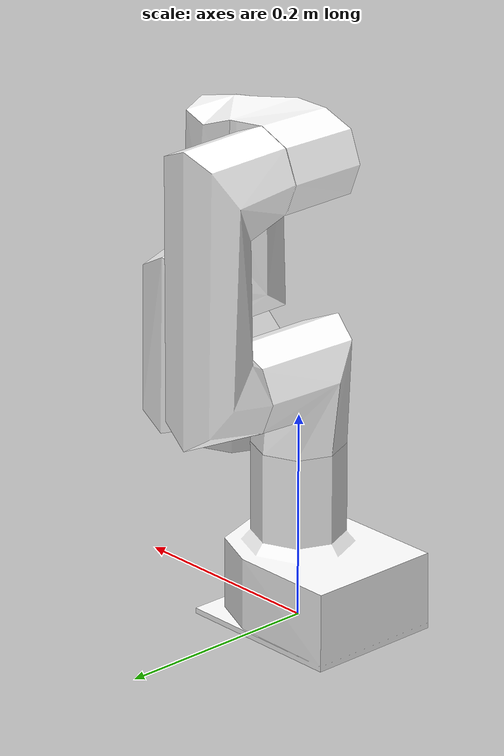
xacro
<?xml version='1.0' encoding='utf-8'?>
<robot xmlns:xacro="http://ros.org/wiki/xacro" name="lite6">
  <xacro:arg name="prefix" default=""/>
  <xacro:arg name="ros_namespace" default="xarm"/>
  <xacro:arg name="limited" default="false"/>
  <xacro:arg name="effort_control" default="false"/>
  <xacro:arg name="velocity_control" default="false"/>
  <xacro:arg name="add_gripper" default="false"/>
  <xacro:arg name="add_vacuum_gripper" default="false"/>

  <xacro:arg name="add_other_geometry" default="false"/>
  <xacro:arg name="geometry_type" default="box"/>
  <xacro:arg name="geometry_mass" default="0.1"/>
  <xacro:arg name="geometry_height" default="0.1"/>
  <xacro:arg name="geometry_radius" default="0.1"/>
  <xacro:arg name="geometry_length" default="0.1"/>
  <xacro:arg name="geometry_width" default="0.1"/>
  <xacro:arg name="geometry_mesh_filename" default=""/>
  <xacro:arg name="geometry_mesh_origin_xyz" default="0 0 0"/>
  <xacro:arg name="geometry_mesh_origin_rpy" default="0 0 0"/>
  <xacro:arg name="geometry_mesh_tcp_xyz" default="0 0 0"/>
  <xacro:arg name="geometry_mesh_tcp_rpy" default="0 0 0"/>

  <xacro:arg name="add_realsense_d435i" default="false"/>

  <!-- load lite6 robot -->
  <xacro:include filename="$(find horti_description)/urdf/inc/lite6_robot_macro.xacro" />
  <xacro:lite6_robot prefix="$(arg prefix)" namespace="$(arg ros_namespace)" limited="$(arg limited)"
    effort_control="$(arg effort_control)" velocity_control="$(arg velocity_control)"
    rs_d435i="$(arg add_realsense_d435i)"
    add_other_geometry="$(arg add_other_geometry)"
    geometry_type="$(arg geometry_type)" geometry_mass="$(arg geometry_mass)"
    geometry_height="$(arg geometry_height)" geometry_radius="$(arg geometry_radius)"
    geometry_length="$(arg geometry_length)" geometry_width="$(arg geometry_width)"
    geometry_mesh_filename="$(arg geometry_mesh_filename)"
    geometry_mesh_origin_xyz="$(arg geometry_mesh_origin_xyz)" geometry_mesh_origin_rpy="$(arg geometry_mesh_origin_rpy)"
    geometry_mesh_tcp_xyz="$(arg geometry_mesh_tcp_xyz)" geometry_mesh_tcp_rpy="$(arg geometry_mesh_tcp_rpy)" />

  <xacro:if value="$(arg add_gripper)">
    <xacro:include filename="$(find horti_description)/urdf/inc/lite_gripper.urdf.xacro" />
    <xacro:uflite_gripper_urdf attach_to="$(arg prefix)link_eef" />
  </xacro:if>

  <xacro:unless value="$(arg add_gripper)">
    <xacro:if value="$(arg add_vacuum_gripper)" >
      <xacro:include filename="$(find horti_description)/urdf/inc/lite_vacuum_gripper.urdf.xacro" />
      <xacro:uflite_vacuum_gripper_urdf attach_to="$(arg prefix)link_eef" />
    </xacro:if>
  </xacro:unless>

</robot>

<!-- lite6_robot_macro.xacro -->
<robot xmlns:xacro="http://ros.org/wiki/xacro" name="lite6" >
  <xacro:macro name="lite6_robot" params="prefix:='' namespace:='xarm' limited:='false' effort_control:='false'
    velocity_control:='false' attach_to:='world' xyz:='0 0 0' rpy:='0 0 0' load_gazebo_plugin:='false' rs_d435i:='false'
    add_other_geometry:='false'
    geometry_type:='box' geometry_mass:='0.1'
    geometry_radius:='0.1' geometry_height:='0.1'
    geometry_length:='0.1' geometry_width:='0.1'
    geometry_mesh_filename:=''
    geometry_mesh_origin_xyz:='0 0 0'
    geometry_mesh_origin_rpy:='0 0 0'
    geometry_mesh_tcp_xyz:='0 0 0'
    geometry_mesh_tcp_rpy:='0 0 0' ">

    <!-- include lite6 relative macros: -->
    <xacro:include filename="$(find horti_description)/urdf/inc/xarm/lite6.urdf.xacro" />
    <xacro:include filename="$(find horti_description)/urdf/inc/xarm/lite6.transmission.xacro" />
    <xacro:include filename="$(find horti_description)/urdf/inc/xarm/lite6.gazebo.xacro" />

    <!-- gazebo_plugin -->
    <xacro:if value="${load_gazebo_plugin}">
    <xacro:include filename="$(find horti_description)/urdf/inc/xarm/common.gazebo.xacro" />
    <xacro:gazebo_ros_control_plugin namespace="${namespace}"/>
    </xacro:if>

    <!-- add one world link if no 'attach_to' specified  -->
    <xacro:if value="${attach_to == 'world'}">
      <link name="world" />
    </xacro:if>

    <joint name="${prefix}world_joint" type="fixed">
      <parent link="${attach_to}" />
      <child link = "${prefix}link_base" />
      <origin xyz="${xyz}" rpy="${rpy}" />
    </joint>

    <xacro:if value="${limited}">
      <xacro:lite6_urdf prefix="${prefix}"
        joint1_lower_limit="${-pi}"   joint1_upper_limit="${pi}"
        joint2_lower_limit="${-2.61799}"  joint2_upper_limit="${2.61799}"
        joint3_lower_limit="${-0.061087}" joint3_upper_limit="${5.235988}"
        joint4_lower_limit="${-pi}"   joint4_upper_limit="${pi}"
        joint5_lower_limit="${-2.1642}"   joint5_upper_limit="${2.1642}"
        joint6_lower_limit="${-pi}"   joint6_upper_limit="${pi}"
        rs_d435i="${rs_d435i}"/>
    </xacro:if>
    <xacro:unless value="${limited}">
      <xacro:lite6_urdf prefix="${prefix}" rs_d435i="${rs_d435i}"/>
    </xacro:unless>

    <xacro:lite6_transmission prefix="${prefix}" hard_interface="$(eval 'EffortJointInterface' if ${effort_control} else 'VelocityJointInterface' if ${velocity_control} else 'PositionJointInterface')" />

    <xacro:lite6_gazebo prefix="${prefix}" />

    <xacro:if value="${add_other_geometry}">
      <xacro:include filename="$(find horti_description)/urdf/inc/xarm/other_geometry.urdf.xacro" />
      <xacro:other_geometry prefix="${prefix}" attach_to="${prefix}link_eef"
        geometry_type="${geometry_type}" geometry_mass="${geometry_mass}"
        geometry_height="${geometry_height}" geometry_radius="${geometry_radius}"
        geometry_length="${geometry_length}" geometry_width="${geometry_width}"
        geometry_mesh_filename="${geometry_mesh_filename}"
        geometry_mesh_origin_xyz="${geometry_mesh_origin_xyz}" geometry_mesh_origin_rpy="${geometry_mesh_origin_rpy}"
        geometry_mesh_tcp_xyz="${geometry_mesh_tcp_xyz}" geometry_mesh_tcp_rpy="${geometry_mesh_tcp_rpy}"
      />
    </xacro:if>

  </xacro:macro>

</robot>

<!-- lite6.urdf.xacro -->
<robot xmlns:xacro="http://ros.org/wiki/xacro">

    <xacro:property name="collision_type" value="reduced_mesh_manual_performance" />
    <!-- Values: reduced_mesh_auto, reduced_mesh_manual_quality, reduced_mesh_manual_performance, spheres, shapes, capsules-->

  <xacro:macro name="lite6_urdf" params="prefix
    joint1_lower_limit:=${-2.0*pi}  joint1_upper_limit:=${2.0*pi}
    joint2_lower_limit:=${-2.61799}  joint2_upper_limit:=${2.61799}
    joint3_lower_limit:=${-0.061087}  joint3_upper_limit:=${5.235988}
    joint4_lower_limit:=${-2.0*pi}  joint4_upper_limit:=${2.0*pi}
    joint5_lower_limit:=${-2.1642}  joint5_upper_limit:=${2.1642}
    joint6_lower_limit:=${-2.0*pi}  joint6_upper_limit:=${2.0*pi}
    rs_d435i:=false">

    <material name="${prefix}White">
      <color rgba="1.0 1.0 1.0 1.0"/>
    </material>

    <material name="${prefix}Silver">
      <color rgba="0.753 0.753 0.753 1.0"/>
    </material>

    <link name="${prefix}link_base">
      <inertial>
        <origin
          xyz="-0.00829544579053192 3.26357432323433E-05 0.0631194584987089"
          rpy="0 0 0" />
        <mass
          value="2.11" />
        <inertia
          ixx="0"
          ixy="0"
          ixz="0"
          iyy="0"
          iyz="0"
          izz="0" />
      </inertial>
      <visual>
        <origin
          xyz="0 0 0"
          rpy="0 0 0" />
        <geometry>
          <mesh filename="package://horti_description/meshes/lite6/visual/base.stl"/>
        </geometry>
        <material name="${prefix}White" />
      </visual>

    <xacro:if value="${collision_type == 'reduced_mesh_auto'}">
        <collision>
            <geometry>
                <mesh filename="package://horti_description/meshes/lite6/collision/base.stl" />
            </geometry>
        </collision>
    </xacro:if>

    <xacro:if value="${collision_type == 'reduced_mesh_manual_quality'}">
        <collision>
            <geometry>
                <mesh filename="package://horti_description/meshes/lite6/collision_manual_quality/link_base_collision.STL" />
            </geometry>
        </collision>
    </xacro:if>

    <xacro:if value="${collision_type == 'reduced_mesh_manual_performance'}">
        <collision>
            <geometry>
                <mesh filename="package://horti_description/meshes/lite6/collision_manual_performance/link_base_collision.STL" />
            </geometry>
        </collision>
    </xacro:if>

    <xacro:if value="${collision_type == 'spheres'}">
    </xacro:if>

    <xacro:if value="${collision_type == 'shapes'}">
    </xacro:if>

    <xacro:if value="${collision_type == 'capsules'}">
        <xacro:capsule-collision e1="-0.0054528 -3.46273e-05 0.0283824" e2="-0.00259396 0.000248867 0.0897363" rad="0.09368540881077124" len="0.06142103881013667" rpy="-0.00462062 0.0465617 -0.000107592" mid="-0.00402338 0.00010712 0.0590593" />
    </xacro:if>

    </link>
    <link name="${prefix}link1">
      <inertial>
        <origin
          xyz="-0.00036 0.042 -0.0025"
          rpy="0 0 0" />
        <mass
          value="1.411" />
        <inertia
          ixx="1.45164E-03"
          ixy="1.24E-05"
          ixz="-6.7E-06"
          iyy="8.873E-04"
          iyz="1.255E-04"
          izz="1.31993E-03" />
      </inertial>
      <visual>
        <origin
          xyz="0 0 0"
          rpy="0 0 0" />
        <geometry>
          <mesh filename="package://horti_description/meshes/lite6/visual/link1.stl"/>
        </geometry>
        <material name="${prefix}White" />
      </visual>
    <xacro:if value="${collision_type == 'reduced_mesh_auto'}">
        <collision>
            <geometry>
                <mesh filename="package://horti_description/meshes/lite6/collision/link1.stl" />
            </geometry>
        </collision>
    </xacro:if>

    <xacro:if value="${collision_type == 'reduced_mesh_manual_quality'}">
        <collision>
            <geometry>
                <mesh filename="package://horti_description/meshes/lite6/collision_manual_quality/link1_collision.STL" />
            </geometry>
        </collision>
    </xacro:if>

    <xacro:if value="${collision_type == 'reduced_mesh_manual_performance'}">
        <collision>
            <geometry>
                <mesh filename="package://horti_description/meshes/lite6/collision_manual_performance/link1_collision.STL" />
            </geometry>
        </collision>
    </xacro:if>

    <xacro:if value="${collision_type == 'spheres'}">
    </xacro:if>

    <xacro:if value="${collision_type == 'shapes'}">
    </xacro:if>

    <xacro:if value="${collision_type == 'capsules'}">
        <xacro:capsule-collision e1="-0.000361192 0.000422669 -0.0220196" e2="2.08195e-06 0.0296148 -0.0011838" rad="0.063890160267874307" len="0.035867029495341492" rpy="-0.950903 0.0101285 -0.00521464" mid="-0.000179555 0.0150187 -0.0116017" />
    </xacro:if>
    </link>
    <joint name="${prefix}joint1" type="revolute">
      <origin
        xyz="0 0 0.2433"
        rpy="0 0 0" />
      <parent
        link="${prefix}link_base" />
      <child
        link="${prefix}link1" />
      <axis
        xyz="0 0 1" />
      <limit
        lower="${joint1_lower_limit}"
        upper="${joint1_upper_limit}"
        effort="32.0"
        velocity="3.14"/>
      <dynamics damping="1.0" friction="1.0"/>
    </joint>
    <link name="${prefix}link2">
      <inertial>
        <origin
          xyz="0.179 0.0 0.0584"
          rpy="0 0 0" />
        <mass
          value="1.34" />
        <inertia
          ixx="1.5854E-03"
          ixy="-6.766E-06"
          ixz="-1.15136E-03"
          iyy="5.6097E-03"
          iyz="1.14E-06"
          izz="4.85E-03" />
      </inertial>
      <visual>
        <origin
          xyz="0 0 0"
          rpy="0 0 0" />
        <geometry>
          <mesh filename="package://horti_description/meshes/lite6/visual/link2.stl"/>
        </geometry>
        <material name="${prefix}White" />
      </visual>

    <xacro:if value="${collision_type == 'reduced_mesh_auto'}">
        <collision>
            <geometry>
                <mesh filename="package://horti_description/meshes/lite6/collision/link2.stl" />
            </geometry>
        </collision>
    </xacro:if>

    <xacro:if value="${collision_type == 'reduced_mesh_manual_quality'}">
        <collision>
            <geometry>
                <mesh filename="package://horti_description/meshes/lite6/collision_manual_quality/link2_collision.STL" />
            </geometry>
        </collision>
    </xacro:if>

    <xacro:if value="${collision_type == 'reduced_mesh_manual_performance'}">
        <collision>
            <geometry>
                <mesh filename="package://horti_description/meshes/lite6/collision_manual_performance/link2_collision.STL" />
            </geometry>
        </collision>
    </xacro:if>

    <xacro:if value="${collision_type == 'spheres'}">
    </xacro:if>

    <xacro:if value="${collision_type == 'shapes'}">
    </xacro:if>

    <xacro:if value="${collision_type == 'capsules'}">
        <xacro:capsule-collision e1="0.0054332 -9.9597e-05 0.100752" e2="0.201413 -6.01135e-05 0.0811532" rad="0.053148363034440045" len="0.19695717559298798" rpy="-3.13958 1.47112 -3.13937" mid="0.103423 -7.98553e-05 0.0909527" />
    </xacro:if>

    </link>
    <joint name="${prefix}joint2" type="revolute">
      <origin
        xyz="0 0 0"
        rpy="1.5708 -1.5708 3.1416" />
      <parent
        link="${prefix}link1" />
      <child
        link="${prefix}link2" />
      <axis
        xyz="0 0 1" />
      <limit
        lower="${joint2_lower_limit}"
        upper="${joint2_upper_limit}"
        effort="32.0"
        velocity="3.14"/>
      <dynamics damping="1.0" friction="1.0"/>
    </joint>
    <link name="${prefix}link3">
      <inertial>
        <origin
          xyz="0.072 -0.036 -0.001"
          rpy="0 0 0" />
        <mass
          value="0.953" />
        <inertia
          ixx="8.861E-04"
          ixy="-3.9287E-04"
          ixz="7.066E-05"
          iyy="1.5785E-03"
          iyz="-2.445E-05"
          izz="1.84677E-03" />
      </inertial>
      <visual>
        <origin
          xyz="0 0 0"
          rpy="0 0 0" />
        <geometry>
          <mesh filename="package://horti_description/meshes/lite6/visual/link3.stl"/>
        </geometry>
        <material name="${prefix}White" />
      </visual>

    <xacro:if value="${collision_type == 'reduced_mesh_auto'}">
        <collision>
            <geometry>
                <mesh filename="package://horti_description/meshes/lite6/collision/link3.stl" />
            </geometry>
        </collision>
    </xacro:if>

    <xacro:if value="${collision_type == 'reduced_mesh_manual_quality'}">
        <collision>
            <geometry>
                <mesh filename="package://horti_description/meshes/lite6/collision_manual_quality/link3_collision.STL" />
            </geometry>
        </collision>
    </xacro:if>

    <xacro:if value="${collision_type == 'reduced_mesh_manual_performance'}">
        <collision>
            <geometry>
                <mesh filename="package://horti_description/meshes/lite6/collision_manual_performance/link3_collision.STL" />
            </geometry>
        </collision>
    </xacro:if>

    <xacro:if value="${collision_type == 'spheres'}">
    </xacro:if>

    <xacro:if value="${collision_type == 'shapes'}">
    </xacro:if>

    <xacro:if value="${collision_type == 'capsules'}">
        <xacro:capsule-collision e1="-0.000200074 -6.06765e-05 -0.00900904" e2="0.0782117 -0.0108837 -1.99642e-05" rad="0.053567713887000434" len="0.079663975339148679" rpy="0.877702 1.39326 0.748316" mid="0.0390058 -0.00547219 -0.0045145" />
    </xacro:if>

    </link>
    <joint name="${prefix}joint3" type="revolute">
      <origin
        xyz="0.2 0 0"
        rpy="-3.1416 0 1.5708" />
      <parent
        link="${prefix}link2" />
      <child
        link="${prefix}link3" />
      <axis
        xyz="0 0 1" />
      <limit
        lower="${joint3_lower_limit}"
        upper="${joint3_upper_limit}"
        effort="18.0"
        velocity="3.14"/>
      <dynamics damping="1.0" friction="1.0"/>
    </joint>
    <link name="${prefix}link4">
      <inertial>
        <origin
          xyz="-0.002 -0.0285 -0.0813"
          rpy="0 0 0" />
        <mass
          value="1.284" />
        <inertia
          ixx="3.705E-03"
          ixy="-2.0E-06"
          ixz="7.17E-06"
          iyy="3.0455E-03"
          iyz="-9.3188E-04"
          izz="1.5413E-03" />
      </inertial>
      <visual>
        <origin
          xyz="0 0 0"
          rpy="0 0 0" />
        <geometry>
          <mesh filename="package://horti_description/meshes/lite6/visual/link4.stl"/>
        </geometry>
        <material name="${prefix}White" />
      </visual>

    <xacro:if value="${collision_type == 'reduced_mesh_auto'}">
        <collision>
            <geometry>
                <mesh filename="package://horti_description/meshes/lite6/collision/link4.stl" />
            </geometry>
        </collision>
    </xacro:if>

    <xacro:if value="${collision_type == 'reduced_mesh_manual_quality'}">
        <collision>
            <geometry>
                <mesh filename="package://horti_description/meshes/lite6/collision_manual_quality/link4_collision.STL" />
            </geometry>
        </collision>
    </xacro:if>

    <xacro:if value="${collision_type == 'reduced_mesh_manual_performance'}">
        <collision>
            <geometry>
                <mesh filename="package://horti_description/meshes/lite6/collision_manual_performance/link4_collision.STL" />
            </geometry>
        </collision>
    </xacro:if>

    <xacro:if value="${collision_type == 'spheres'}">
    </xacro:if>

    <xacro:if value="${collision_type == 'shapes'}">
    </xacro:if>

    <xacro:if value="${collision_type == 'capsules'}">
        <xacro:capsule-collision e1="-0.00693104 -0.0545553 -0.0272353" e2="0.000145021 -0.0012119 -0.138516" rad="0.066752435195672727" len="0.12360792315155163" rpy="-2.69459 0.0572774 -0.25074" mid="-0.00339301 -0.0278836 -0.0828755" />
    </xacro:if>

    </link>
    <joint name="${prefix}joint4" type="revolute">
      <origin
        xyz="0.087 -0.2276 0"
        rpy="1.5708 0 0" />
      <parent
        link="${prefix}link3" />
      <child
        link="${prefix}link4" />
      <axis
        xyz="0 0 1" />
      <limit
        lower="${joint4_lower_limit}"
        upper="${joint4_upper_limit}"
        effort="2.5"
        velocity="3.14"/>
      <dynamics damping="0.1" friction="0.1"/>
    </joint>
    <link name="${prefix}link5">
      <inertial>
        <origin
          xyz="0.0 0.010 0.0019"
          rpy="0 0 0" />
        <mass
          value="0.804" />
        <inertia
          ixx="5.668E-04"
          ixy="6E-07"
          ixz="-5.3E-06"
          iyy="5.077E-04"
          iyz="-4.8E-07"
          izz="5.3E-04" />
      </inertial>
      <visual>
        <origin
          xyz="0 0 0"
          rpy="0 0 0" />
        <geometry>
          <mesh filename="package://horti_description/meshes/lite6/visual/link5.stl"/>
        </geometry>
        <material name="${prefix}Silver" />
      </visual>

    <xacro:if value="${collision_type == 'reduced_mesh_auto'}">
        <collision>
            <geometry>
                <mesh filename="package://horti_description/meshes/lite6/collision/link5.stl" />
            </geometry>
        </collision>
    </xacro:if>

    <xacro:if value="${collision_type == 'reduced_mesh_manual_quality'}">
        <collision>
            <geometry>
                <mesh filename="package://horti_description/meshes/lite6/collision_manual_quality/link5_collision.STL" />
            </geometry>
        </collision>
    </xacro:if>

    <xacro:if value="${collision_type == 'reduced_mesh_manual_performance'}">
        <collision>
            <geometry>
                <mesh filename="package://horti_description/meshes/lite6/collision_manual_performance/link5_collision.STL" />
            </geometry>
        </collision>
    </xacro:if>

    <xacro:if value="${collision_type == 'spheres'}">
    </xacro:if>

    <xacro:if value="${collision_type == 'shapes'}">
    </xacro:if>

    <xacro:if value="${collision_type == 'capsules'}">
        <xacro:capsule-collision e1="0.000256318 0.00945339 0.00418025" e2="-0.000230592 -0.00402292 0.00211128" rad="0.054491213054397282" len="0.013642894966188644" rpy="1.72313 -0.0356972 -0.0415943" mid="1.2863e-05 0.00271524 0.00314576" />
    </xacro:if>

    </link>
    <joint name="${prefix}joint5" type="revolute">
      <origin
        xyz="0 0 0"
        rpy="1.5708 0 0" />
      <parent
        link="${prefix}link4" />
      <child
        link="${prefix}link5" />
      <axis
        xyz="0 0 1" />
      <limit
        lower="${joint5_lower_limit}"
        upper="${joint5_upper_limit}"
        effort="2.5"
        velocity="3.14"/>
      <dynamics damping="0.1" friction="0.1"/>
    </joint>
    <link name="${prefix}link6">
      <inertial>
        <origin
          xyz="0.0 -0.00194 -0.0102"
          rpy="0 0 0" />
        <mass
          value="0.180" />
        <inertia
          ixx="7.726E-05"
          ixy="1E-06"
          ixz="4E-07"
          iyy="8.5665E-05"
          iyz="-6E-07"
          izz="1.4814E-04" />
      </inertial>
      <visual>
        <origin
          xyz="0 0 0"
          rpy="0 0 0" />
        <geometry>
          <mesh filename="package://horti_description/meshes/lite6/visual/link6.stl"/>
        </geometry>
        <material name="${prefix}Silver" />
      </visual>

    <xacro:if value="${collision_type == 'reduced_mesh_auto'}">
        <collision>
            <geometry>
                <mesh filename="package://horti_description/meshes/lite6/collision/link6.stl" />
            </geometry>
        </collision>
    </xacro:if>

    <xacro:if value="${collision_type == 'reduced_mesh_manual_quality'}">
        <collision>
            <geometry>
                <mesh filename="package://horti_description/meshes/lite6/collision_manual_quality/link6_collision.STL" />
            </geometry>
        </collision>
    </xacro:if>

    <xacro:if value="${collision_type == 'reduced_mesh_manual_performance'}">
        <collision>
            <geometry>
                <mesh filename="package://horti_description/meshes/lite6/collision_manual_performance/link6_collision.STL" />
            </geometry>
        </collision>
    </xacro:if>

    <xacro:if value="${collision_type == 'spheres'}">
    </xacro:if>

    <xacro:if value="${collision_type == 'shapes'}">
    </xacro:if>

    <xacro:if value="${collision_type == 'capsules'}">
        <xacro:capsule-collision e1="-0.000205766 0.000151288 -0.0101214" e2="0.00034011 -4.8247e-05 -0.0101304" rad="0.039592907362076969" len="0.00058126976613551964" rpy="1.61557 1.22003 1.2624" mid="6.71721e-05 5.15207e-05 -0.0101259" />
    </xacro:if>

    </link>
    <joint name="${prefix}joint6" type="revolute">
      <origin
        xyz="0 0.0615 0"
        rpy="-1.5708 0 0" />
      <parent
        link="${prefix}link5" />
      <child
        link="${prefix}link6" />
      <axis
        xyz="0 0 1" />
      <limit
        lower="${joint6_lower_limit}"
        upper="${joint6_upper_limit}"
        effort="2.5"
        velocity="3.14"/>
      <dynamics damping="0.1" friction="0.1"/>
    </joint>

    <xacro:if value="${rs_d435i}">
      <link name="${prefix}link_eef">
        <visual>
          <origin
            xyz="0 0 0"
            rpy="0 0 0" />
          <geometry>
            <mesh
              filename="package://d435i_xarm_setup/mesh/d435_with_cam_stand.STL" />
          </geometry>
          <material name="Silver" />
        </visual>
        <collision>
          <origin
            xyz="0 0 0"
            rpy="0 0 0" />
          <geometry>
            <mesh
              filename="package://d435i_xarm_setup/mesh/d435_with_cam_stand_collision.STL" />
          </geometry>
        </collision>
      </link>
    </xacro:if>

    <xacro:unless value="${rs_d435i}">
      <link name="${prefix}link_eef"/>
    </xacro:unless>

    <joint
      name="${prefix}joint_eef"
      type="fixed">
      <origin
        xyz="0 0 0"
        rpy="0 0 0" />
      <parent
        link="${prefix}link6" />
      <child
        link="${prefix}link_eef" />
    </joint>

  </xacro:macro>
</robot>
